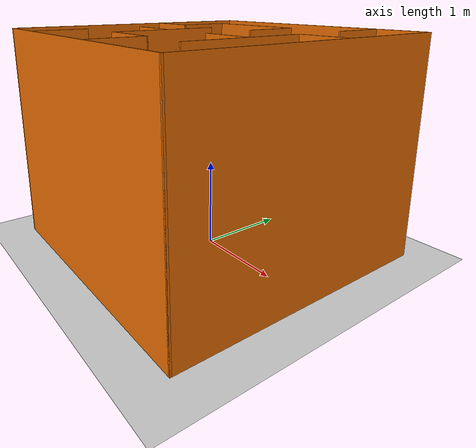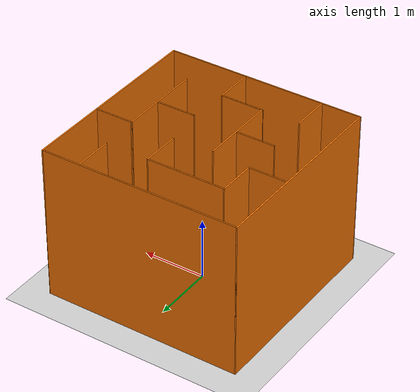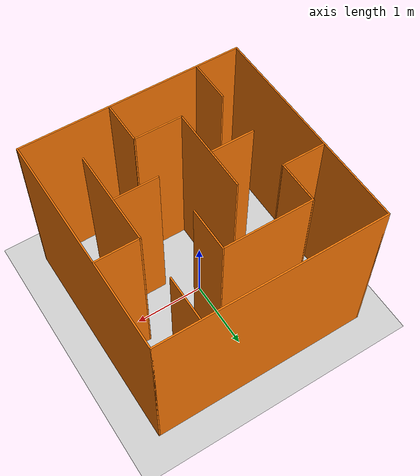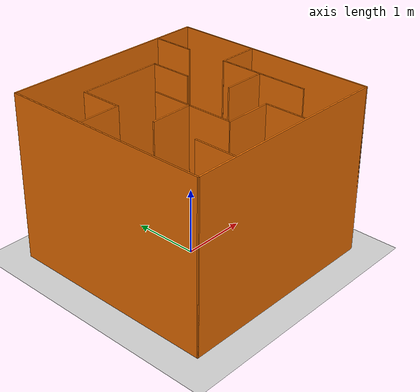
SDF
<sdf version="1.7">
 <world name="default">
  <light name="sun" type="directional">
   <pose>0 0 10 0 -0 0</pose>
   <diffuse>0.8 0.8 0.8 1</diffuse>
   <specular>0.2 0.2 0.2 1</specular>
   <attenuation>
    <range>1000</range>
    <constant>0.9</constant>
    <linear>0.01</linear>
    <quadratic>0.001</quadratic>
   </attenuation>
   <direction>-0.5 0.1 -0.9</direction>
   <spot><inner_angle>0</inner_angle><outer_angle>0</outer_angle><falloff>0</falloff></spot>
  </light>
  <model name="ground_plane">
   <static>1</static>
   <link name="link">
    <collision name="collision">
     <geometry><plane><normal>0 0 1</normal><size>100 100</size></plane></geometry>
     <surface><friction><ode><mu>100</mu><mu2>50</mu2></ode></friction></surface>
    </collision>
    <visual name="visual">
     <cast_shadows>0</cast_shadows>
     <geometry><plane><normal>0 0 1</normal><size>100 100</size></plane></geometry>
     <material>
      <script><uri>file://media/materials/scripts/gazebo.material</uri><name>Gazebo/Grey</name></script>
     </material>
    </visual>
   </link>
  </model>
  <gravity>0 0 -9.8</gravity>
  <magnetic_field>6e-06 2.3e-05 -4.2e-05</magnetic_field>
  <atmosphere type="adiabatic"/>
  <physics type="ode">
   <max_step_size>0.001</max_step_size>
   <real_time_factor>1</real_time_factor>
   <real_time_update_rate>1000</real_time_update_rate>
  </physics>
  <scene><ambient>0.4 0.4 0.4 1</ambient><background>0.7 0.7 0.7 1</background><shadows>1</shadows></scene>
  <audio><device>default</device></audio>
  <spherical_coordinates>
   <surface_model>EARTH_WGS84</surface_model>
   <latitude_deg>0</latitude_deg>
   <longitude_deg>0</longitude_deg>
   <elevation>0</elevation>
   <heading_deg>0</heading_deg>
  </spherical_coordinates>
  <model name="mapa_pract_1">
   <pose>0.0015 -0.022 0 0 -0 0</pose>
   <link name="Wall_100">
    <collision name="Wall_100_Collision">
     <geometry><box><size>1.25 0.02 2.5</size></box></geometry>
     <pose>0 0 1.25 0 -0 0</pose>
    </collision>
    <visual name="Wall_100_Visual">
     <pose>0 0 1.25 0 -0 0</pose>
     <geometry><box><size>1.25 0.02 2.5</size></box></geometry>
     <material>
      <script><uri>file://media/materials/scripts/gazebo.material</uri><name>Gazebo/Grey</name></script>
      <ambient>0.996078 0.47451 0.0196078 1</ambient>
     </material>
     <meta><layer>0</layer></meta>
    </visual>
    <pose>-0.359291 0.945582 0 0 -0 0</pose>
   </link>
   <link name="Wall_102">
    <collision name="Wall_102_Collision">
     <geometry><box><size>0.62 0.02 2.5</size></box></geometry>
     <pose>0 0 1.25 0 -0 0</pose>
    </collision>
    <visual name="Wall_102_Visual">
     <pose>0 0 1.25 0 -0 0</pose>
     <geometry><box><size>0.62 0.02 2.5</size></box></geometry>
     <material>
      <script><uri>file://media/materials/scripts/gazebo.material</uri><name>Gazebo/Grey</name></script>
      <ambient>0.996078 0.47451 0.0196078 1</ambient>
     </material>
     <meta><layer>0</layer></meta>
    </visual>
    <pose>-0.9775 0.648857 0 0 -0 1.5708</pose>
   </link>
   <link name="Wall_106">
    <collision name="Wall_106_Collision">
     <geometry><box><size>0.62 0.02 2.5</size></box></geometry>
     <pose>0 0 1.25 0 -0 0</pose>
    </collision>
    <visual name="Wall_106_Visual">
     <pose>0 0 1.25 0 -0 0</pose>
     <geometry><box><size>0.62 0.02 2.5</size></box></geometry>
     <material>
      <script><uri>file://media/materials/scripts/gazebo.material</uri><name>Gazebo/Grey</name></script>
      <ambient>0.996078 0.47451 0.0196078 1</ambient>
     </material>
     <meta><layer>0</layer></meta>
    </visual>
    <pose>0.273502 0.644909 0 0 -0 -1.5708</pose>
   </link>
   <link name="Wall_110">
    <collision name="Wall_110_Collision">
     <geometry><box><size>0.62 0.02 2.5</size></box></geometry>
     <pose>0 0 1.25 0 -0 0</pose>
    </collision>
    <visual name="Wall_110_Visual">
     <pose>0 0 1.25 0 -0 0</pose>
     <geometry><box><size>0.62 0.02 2.5</size></box></geometry>
     <material>
      <script><uri>file://media/materials/scripts/gazebo.material</uri><name>Gazebo/Grey</name></script>
      <ambient>0.996078 0.47451 0.0196078 1</ambient>
     </material>
     <meta><layer>0</layer></meta>
    </visual>
    <pose>1.28771 0.32935 0 0 -0 0</pose>
   </link>
   <link name="Wall_112">
    <collision name="Wall_112_Collision">
     <geometry><box><size>0.62 0.02 2.5</size></box></geometry>
     <pose>0 0 1.25 0 -0 0</pose>
    </collision>
    <visual name="Wall_112_Visual">
     <pose>0 0 1.25 0 -0 0</pose>
     <geometry><box><size>0.62 0.02 2.5</size></box></geometry>
     <material>
      <script><uri>file://media/materials/scripts/gazebo.material</uri><name>Gazebo/Grey</name></script>
      <ambient>0.996078 0.47451 0.0196078 1</ambient>
     </material>
     <meta><layer>0</layer></meta>
    </visual>
    <pose>0.671753 -0.302418 0 0 -0 0</pose>
   </link>
   <link name="Wall_114">
    <collision name="Wall_114_Collision">
     <geometry><box><size>1.37 0.02 2.5</size></box></geometry>
     <pose>0 0 1.25 0 -0 0</pose>
    </collision>
    <visual name="Wall_114_Visual">
     <pose>0 0 1.25 0 -0 0</pose>
     <geometry><box><size>1.37 0.02 2.5</size></box></geometry>
     <material>
      <script><uri>file://media/materials/scripts/gazebo.material</uri><name>Gazebo/Grey</name></script>
      <ambient>0.996078 0.47451 0.0196078 1</ambient>
     </material>
     <meta><layer>0</layer></meta>
    </visual>
    <pose>0.988522 -0.345418 0 0 -0 -1.5708</pose>
   </link>
   <link name="Wall_116">
    <collision name="Wall_116_Collision">
     <geometry><box><size>0.62 0.02 2.5</size></box></geometry>
     <pose>0 0 1.25 0 -0 0</pose>
    </collision>
    <visual name="Wall_116_Visual">
     <pose>0 0 1.25 0 -0 0</pose>
     <geometry><box><size>0.62 0.02 2.5</size></box></geometry>
     <material>
      <script><uri>file://media/materials/scripts/gazebo.material</uri><name>Gazebo/Grey</name></script>
      <ambient>0.996078 0.47451 0.0196078 1</ambient>
     </material>
     <meta><layer>0</layer></meta>
    </visual>
    <pose>0.967784 1.25887 0 0 -0 1.5708</pose>
   </link>
   <link name="Wall_67">
    <collision name="Wall_67_Collision">
     <geometry><box><size>3.20511 0.02 2.5</size></box></geometry>
     <pose>0 0 1.25 0 -0 0</pose>
    </collision>
    <visual name="Wall_67_Visual">
     <pose>0 0 1.25 0 -0 0</pose>
     <geometry><box><size>3.20511 0.02 2.5</size></box></geometry>
     <material>
      <script><uri>file://media/materials/scripts/gazebo.material</uri><name>Gazebo/Grey</name></script>
      <ambient>0.996078 0.47451 0.0196078 1</ambient>
     </material>
     <meta><layer>0</layer></meta>
    </visual>
    <pose>-0 -1.575 0 0 -0 0</pose>
   </link>
   <link name="Wall_69">
    <collision name="Wall_69_Collision">
     <geometry><box><size>3.17 0.02 2.5</size></box></geometry>
     <pose>0 0 1.25 0 -0 0</pose>
    </collision>
    <visual name="Wall_69_Visual">
     <pose>0 0 1.25 0 -0 0</pose>
     <geometry><box><size>3.17 0.02 2.5</size></box></geometry>
     <material>
      <script><uri>file://media/materials/scripts/gazebo.material</uri><name>Gazebo/Grey</name></script>
      <ambient>0.996078 0.47451 0.0196078 1</ambient>
     </material>
     <meta><layer>0</layer></meta>
    </visual>
    <pose>1.5925 -0 0 0 -0 1.5708</pose>
   </link>
   <link name="Wall_71">
    <collision name="Wall_71_Collision">
     <geometry><box><size>3.17 0.02 2.5</size></box></geometry>
     <pose>0 0 1.25 0 -0 0</pose>
    </collision>
    <visual name="Wall_71_Visual">
     <pose>0 0 1.25 0 -0 0</pose>
     <geometry><box><size>3.17 0.02 2.5</size></box></geometry>
     <material>
      <script><uri>file://media/materials/scripts/gazebo.material</uri><name>Gazebo/Grey</name></script>
      <ambient>0.996078 0.47451 0.0196078 1</ambient>
     </material>
     <meta><layer>0</layer></meta>
    </visual>
    <pose>-1.5925 -0 0 0 -0 1.5708</pose>
   </link>
   <link name="Wall_72">
    <collision name="Wall_72_Collision">
     <geometry><box><size>3.2 0.02 2.5</size></box></geometry>
     <pose>0 0 1.25 0 -0 0</pose>
    </collision>
    <visual name="Wall_72_Visual">
     <pose>0 0 1.25 0 -0 0</pose>
     <geometry><box><size>3.2 0.02 2.5</size></box></geometry>
     <material>
      <script><uri>file://media/materials/scripts/gazebo.material</uri><name>Gazebo/Grey</name></script>
      <ambient>0.996078 0.47451 0.0196078 1</ambient>
     </material>
     <meta><layer>0</layer></meta>
    </visual>
    <pose>-0.0025 1.575 0 0 -0 0</pose>
   </link>
   <link name="Wall_79">
    <collision name="Wall_79_Collision">
     <geometry><box><size>0.62 0.02 2.5</size></box></geometry>
     <pose>0 0 1.25 0 -0 0</pose>
    </collision>
    <visual name="Wall_79_Visual">
     <pose>0 0 1.25 0 -0 0</pose>
     <geometry><box><size>0.62 0.02 2.5</size></box></geometry>
     <material>
      <script><uri>file://media/materials/scripts/gazebo.material</uri><name>Gazebo/Grey</name></script>
      <ambient>0.996078 0.47451 0.0196078 1</ambient>
     </material>
     <meta><layer>0</layer></meta>
    </visual>
    <pose>-0.970104 -1.26421 0 0 -0 1.5708</pose>
   </link>
   <link name="Wall_81">
    <collision name="Wall_81_Collision">
     <geometry><box><size>0.620007 0.02 2.5</size></box></geometry>
     <pose>0 0 1.25 0 -0 0</pose>
    </collision>
    <visual name="Wall_81_Visual">
     <pose>0 0 1.25 0 -0 0</pose>
     <geometry><box><size>0.620007 0.02 2.5</size></box></geometry>
     <material>
      <script><uri>file://media/materials/scripts/gazebo.material</uri><name>Gazebo/Grey</name></script>
      <ambient>0.996078 0.47451 0.0196078 1</ambient>
     </material>
     <meta><layer>0</layer></meta>
    </visual>
    <pose>0.321806 -1.2538 0 0 -0 -1.56644</pose>
   </link>
   <link name="Wall_89">
    <collision name="Wall_89_Collision">
     <geometry><box><size>0.698494 0.02 2.5</size></box></geometry>
     <pose>0 0 1.25 0 -0 0</pose>
    </collision>
    <visual name="Wall_89_Visual">
     <pose>0 0 1.25 0 -0 0</pose>
     <geometry><box><size>0.698494 0.02 2.5</size></box></geometry>
     <material>
      <script><uri>file://media/materials/scripts/gazebo.material</uri><name>Gazebo/Grey</name></script>
      <ambient>0.996078 0.47451 0.0196078 1</ambient>
     </material>
     <meta><layer>0</layer></meta>
    </visual>
    <pose>-0.01874 -0.952407 0 0 -0 -0.004697</pose>
   </link>
   <link name="Wall_91">
    <collision name="Wall_91_Collision">
     <geometry><box><size>1.25 0.02 2.5</size></box></geometry>
     <pose>0 0 1.25 0 -0 0</pose>
    </collision>
    <visual name="Wall_91_Visual">
     <pose>0 0 1.25 0 -0 0</pose>
     <geometry><box><size>1.25 0.02 2.5</size></box></geometry>
     <material>
      <script><uri>file://media/materials/scripts/gazebo.material</uri><name>Gazebo/Grey</name></script>
      <ambient>0.996078 0.47451 0.0196078 1</ambient>
     </material>
     <meta><layer>0</layer></meta>
    </visual>
    <pose>-0.35798 -0.328209 0 0 -0 1.5708</pose>
   </link>
   <link name="Wall_96">
    <collision name="Wall_96_Collision">
     <geometry><box><size>0.62 0.02 2.5</size></box></geometry>
     <pose>0 0 1.25 0 -0 0</pose>
    </collision>
    <visual name="Wall_96_Visual">
     <pose>0 0 1.25 0 -0 0</pose>
     <geometry><box><size>0.62 0.02 2.5</size></box></geometry>
     <material>
      <script><uri>file://media/materials/scripts/gazebo.material</uri><name>Gazebo/Grey</name></script>
      <ambient>0.996078 0.47451 0.0196078 1</ambient>
     </material>
     <meta><layer>0</layer></meta>
    </visual>
    <pose>-0.673665 -0.287 0 0 -0 0</pose>
   </link>
   <link name="Wall_98">
    <collision name="Wall_98_Collision">
     <geometry><box><size>0.62 0.02 2.5</size></box></geometry>
     <pose>0 0 1.25 0 -0 0</pose>
    </collision>
    <visual name="Wall_98_Visual">
     <pose>0 0 1.25 0 -0 0</pose>
     <geometry><box><size>0.62 0.02 2.5</size></box></geometry>
     <material>
      <script><uri>file://media/materials/scripts/gazebo.material</uri><name>Gazebo/Grey</name></script>
      <ambient>0.996078 0.47451 0.0196078 1</ambient>
     </material>
     <meta><layer>0</layer></meta>
    </visual>
    <pose>-1.27371 0.344604 0 0 -0 3.14159</pose>
   </link>
   <static>1</static>
  </model>
 </world>
</sdf>
